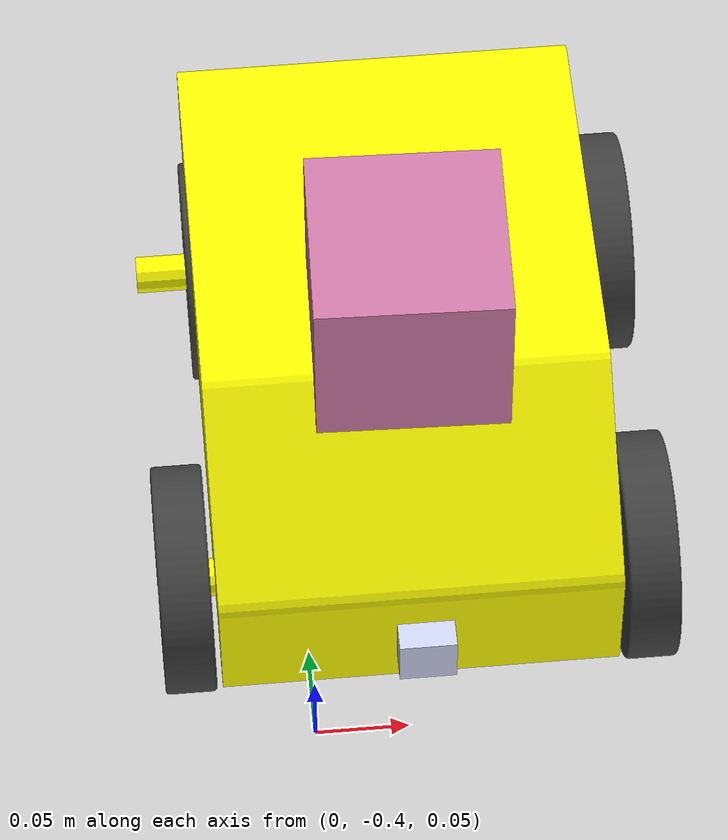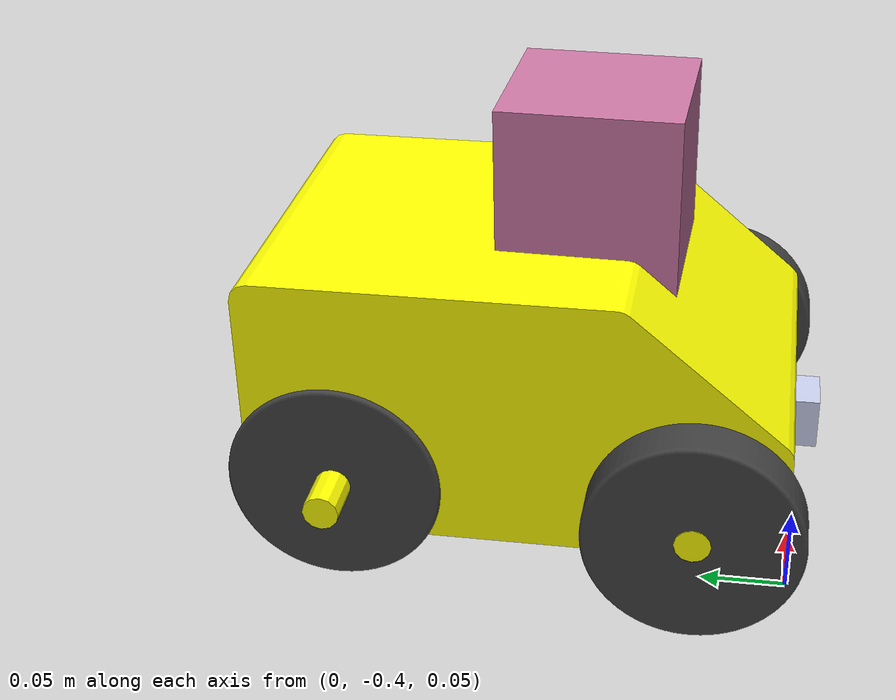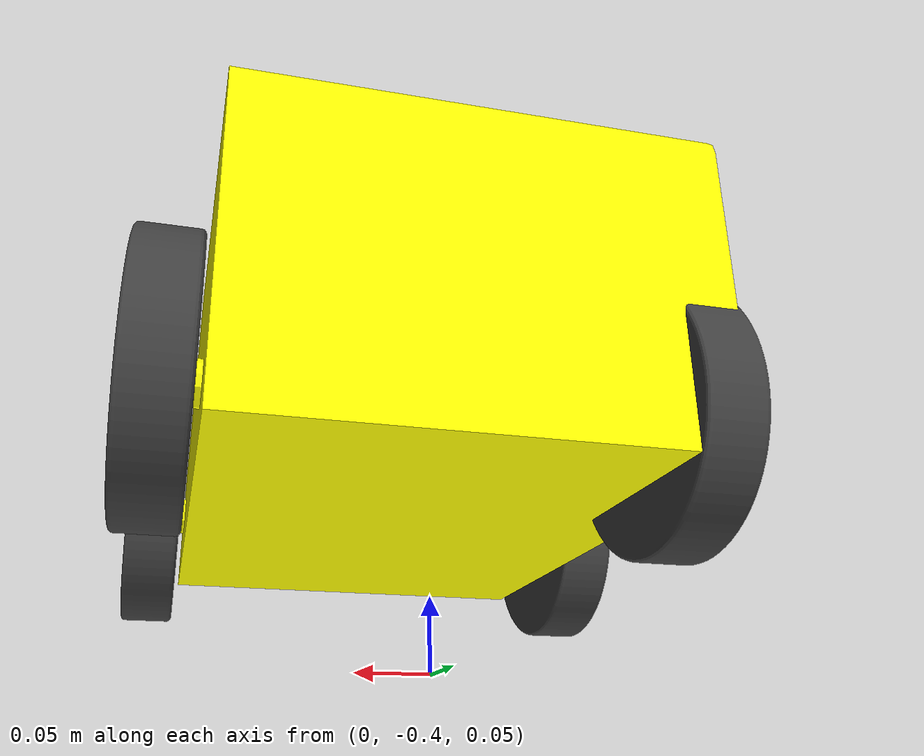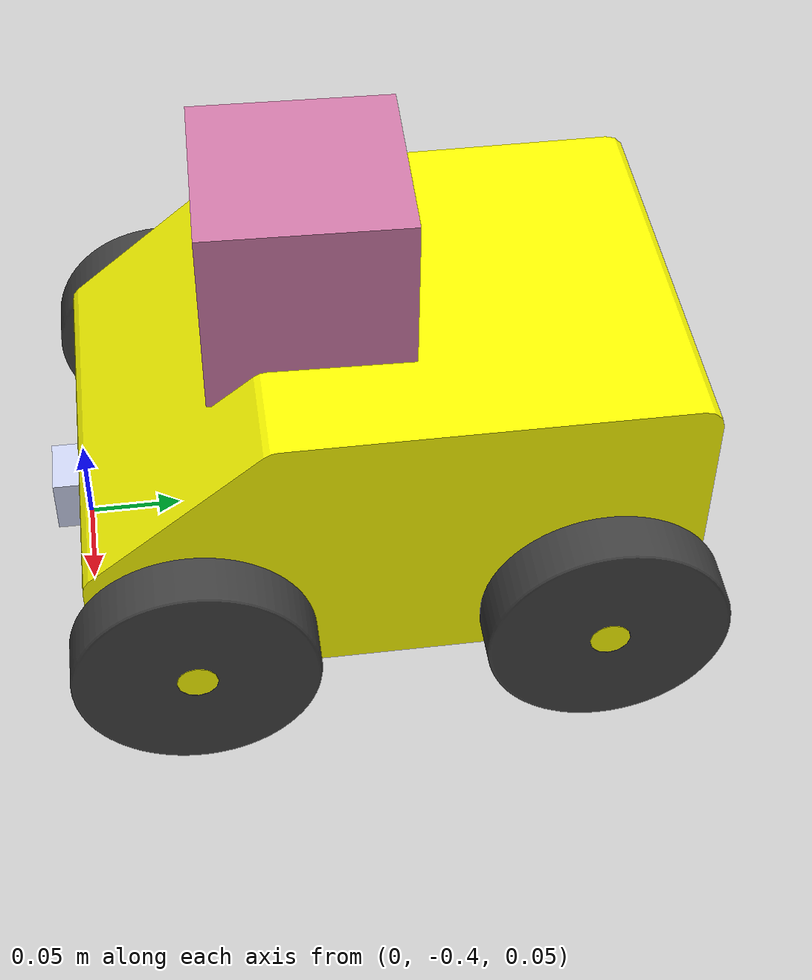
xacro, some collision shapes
<?xml version="1.0" encoding="utf-8"?>
<robot
  name="mobile_robot" xmlns:xacro="http://www.ros.org/wiki/xacro">
	<xacro:include filename="$(find rain_bot_description)/urdf/material.xacro"/>
	<xacro:include filename="$(find rain_bot_description)/urdf/rainrobot.gazebo"/>

  <link
    name="robot_link">

	<pose>0.16492 2 -0.11 0 .15 0</pose>
    <inertial>
      <origin
        xyz="0.082699 -0.15 0"
        rpy="0 0 0" />
      <mass
        value="8.74027084449222" />
      <inertia
        ixx="0.074905220829047"
        ixy="2.91774380001915E-07"
        ixz="-1.32052170408354E-06"
        iyy="0.0918630354355875"
        iyz="0.00460028163280806"
        izz="0.0480683755683095" />
    </inertial>
    <visual>
      <origin
        xyz="0 0 0"
        rpy="0 0 0" />
      <geometry>
        <mesh
          filename="package://mobile_robot/meshes/robot_link.STL" />
      </geometry>
      <material
        name="">
        <color
          rgba="1 1 0 1" />
      </material>
    </visual>
    <collision>
      <origin
        xyz="0 0 0"
        rpy="0 0 0" />
      <geometry>
        <mesh
          filename="package://mobile_robot/meshes/robot_link.STL" />
      </geometry>
    </collision>
  </link>
  <link
    name="left_wheel1_link">
    <inertial>
      <origin
        xyz="0.0135000000000001 -5.55111512312578E-17 5.55111512312578E-17"
        rpy="0 0 0" />
      <mass
        value="0.296238100841938" />
      <inertia
        ixx="0.000546950317521517"
        ixy="-1.37710022577043E-21"
        ixz="1.5771373518154E-22"
        iyy="0.000291401124335906"
        iyz="1.35525271560688E-20"
        izz="0.000291401124335906" />
    </inertial>
    <visual>
      <origin
        xyz="0 0 0"
        rpy="0 0 0" />
      <geometry>
        <mesh
          filename="package://mobile_robot/meshes/left_wheel1_link.STL" />
      </geometry>
      <material
        name="">
        <color
          rgba="0.250980392156863 0.250980392156863 0.250980392156863 1" />
      </material>
    </visual>
    <collision>
      <origin
        xyz="0 0 0"
        rpy="0 0 0" />
      <geometry>
        <mesh
          filename="package://mobile_robot/meshes/left_wheel1_link.STL" />
      </geometry>
    </collision>
  </link>
  <joint
    name="left_wheel1_joint"
    type="continuous">
    <origin
      xyz="0.16492 -0.34714 0.12972"
      rpy="0.42362 0 0" />
    <parent
      link="robot_link" />
    <child
      link="left_wheel1_link" />
    <axis
      xyz="1 0 0" />
<limit effort="100" velocity="100"/>
    <joint_properties damping="0.0" friction="0.0"/>
  </joint>
  <link
    name="left_wheel2_link">
    <inertial>
      <origin
        xyz="0.0135000000000001 2.77555756156289E-17 2.77555756156289E-17"
        rpy="0 0 0" />
      <mass
        value="0.296238100841938" />
      <inertia
        ixx="0.000546950317521517"
        ixy="-4.44596067334662E-37"
        ixz="-2.87513805867627E-36"
        iyy="0.000291401124335906"
        iyz="-1.78981332462866E-36"
        izz="0.000291401124335906" />
    </inertial>
    <visual>
      <origin
        xyz="0 0 0"
        rpy="0 0 0" />
      <geometry>
        <mesh
          filename="package://mobile_robot/meshes/left_wheel2_link.STL" />
      </geometry>
      <material
        name="">
        <color
          rgba="0.250980392156863 0.250980392156863 0.250980392156863 1" />
      </material>
    </visual>
    <collision>
      <origin
        xyz="0 0 0"
        rpy="0 0 0" />
      <geometry>
        <mesh
          filename="package://mobile_robot/meshes/left_wheel2_link.STL" />
      </geometry>
    </collision>
  </link>
  <joint
    name="left_wheel2_joint"
    type="continuous">
    <origin
      xyz="0.16492 -0.14699 0.12972"
      rpy="1.5708 0 0" />
    <parent
      link="robot_link" />
    <child
      link="left_wheel2_link" />
    <axis
      xyz="1 0 0" />
<limit effort="100" velocity="100"/>
    <joint_properties damping="0.0" friction="0.0"/>
  </joint>
  <link
    name="right_wheel1_link">
    <inertial>
      <origin
        xyz="-0.0135 2.77555756156289E-17 5.55111512312578E-17"
        rpy="0 0 0" />
      <mass
        value="0.296238100841938" />
      <inertia
        ixx="0.000546950317521517"
        ixy="-4.44596067334662E-37"
        ixz="0"
        iyy="0.000291401124335906"
        iyz="-1.78981332462866E-36"
        izz="0.000291401124335906" />
    </inertial>
    <visual>
      <origin
        xyz="0 0 0"
        rpy="0 0 0" />
      <geometry>
        <mesh
          filename="package://mobile_robot/meshes/right_wheel1_link.STL" />
      </geometry>
      <material
        name="">
        <color
          rgba="0.250980392156863 0.250980392156863 0.250980392156863 1" />
      </material>
    </visual>
    <collision>
      <origin
        xyz="0 0 0"
        rpy="0 0 0" />
      <geometry>
        <mesh
          filename="package://mobile_robot/meshes/right_wheel1_link.STL" />
      </geometry>
    </collision>
  </link>
  <joint
    name="right_wheel1_joint"
    type="continuous">
    <origin
      xyz="-0.051077 -0.34714 0.12972"
      rpy="1.5708 0 0" />
    <parent
      link="robot_link" />
    <child
      link="right_wheel1_link" />
    <axis
      xyz="1 0 0" />
	<limit effort="100" velocity="100"/>
    <joint_properties damping="0.0" friction="0.0"/>
  </joint>
  <link
    name="right_wheel2_link">
    <inertial>
      <origin
        xyz="-0.0135 0 0"
        rpy="0 0 0" />
      <mass
        value="0.296238100841938" />
      <inertia
        ixx="0.000546950317521517"
        ixy="-4.44596067334662E-37"
        ixz="1.3216903188695E-36"
        iyy="0.000291401124335906"
        iyz="-1.78981332462866E-36"
        izz="0.000291401124335906" />
    </inertial>
    <visual>
      <origin
        xyz="0 0 0"
        rpy="0 0 0" />
      <geometry>
        <mesh
          filename="package://mobile_robot/meshes/right_wheel2_link.STL" />
      </geometry>
      <material
        name="">
        <color
          rgba="0.250980392156863 0.250980392156863 0.250980392156863 1" />
      </material>
    </visual>
    <collision>
      <origin
        xyz="0 0 0"
        rpy="0 0 0" />
      <geometry>
        <mesh
          filename="package://mobile_robot/meshes/right_wheel2_link.STL" />
      </geometry>

    </collision>
  </link>
  <joint
    name="right_wheel2_joint"
    type="continuous">
    <origin
      xyz="-0.051077 -0.14699 0.12972"
      rpy="1.5708 0 0" />
    <parent
      link="robot_link" />
    <child
      link="right_wheel2_link" />
    <axis
      xyz="1 0 0" />
    <limit effort="100" velocity="100"/>
    <joint_properties damping="0.0" friction="0.0"/>
  </joint>
  <link
    name="sensor_Link">
    <inertial>
      <origin
        xyz="0 0 0.00644736842105265"
        rpy="0 0 0" />
      <mass
        value="0.00950000000000001" />
      <inertia
        ixx="1.06343201754386E-06"
        ixy="7.612118886702E-23"
        ixz="-5.33245791266713E-23"
        iyy="1.06343201754386E-06"
        iyz="-1.66726434324943E-21"
        izz="1.75833333333334E-06" />
    </inertial>
    <visual>
      <origin
        xyz="0 0 0"
        rpy="0 0 0" />
      <geometry>
        <mesh
          filename="package://mobile_robot/meshes/sensor_Link.STL" />
      </geometry>
      <material
        name="">
        <color
          rgba="0.792156862745098 0.819607843137255 0.933333333333333 1" />
      </material>
    </visual>
    <collision>
      <origin
        xyz="0 0 0"
        rpy="0 0 0" />
      <geometry>
        <mesh
          filename="package://mobile_robot/meshes/sensor_Link.STL" />
      </geometry>
    </collision>
  </link>
  <joint
    name="sensor_joint"
    type="fixed">
    <origin
      xyz="0.058923 -0.41199 0.13381"
      rpy="-1.5708 0 0" />
    <parent
      link="robot_link" />
    <child
      link="sensor_Link" />
    <axis
      xyz="0 1 0" />
  </joint>

<!--hukuyo laser-->

<joint name="hokuyo_joint" type="fixed">
    <axis xyz="1 0 0" />
    <origin xyz=".06 -0.28 .28" rpy="0 0 -1.599"/>
    <parent link="robot_link"/>
    <child link="hokuyo"/>
  </joint>

<!-- Hokuyo Laser -->
  <link name="hokuyo">
    <collision>
      <origin xyz="0 0 0" rpy="0 0 0"/>
      <geometry>
    <box size="0.1 0.1 0.1"/>
      </geometry>
    </collision>

    <visual>
      <origin xyz="0 0 0" rpy="0 0 0"/>
      <geometry>
        <mesh filename="package://rain_bot_description/meshes/hokuyo.dae"/>
      </geometry>
    </visual>

    <inertial>
      <mass value="1e-5" />
      <origin xyz="0 0 0" rpy="0 0 0"/>
      <inertia ixx="1e-6" ixy="0" ixz="0" iyy="1e-6" iyz="0" izz="1e-6" />
    </inertial>
  </link>

</robot>
